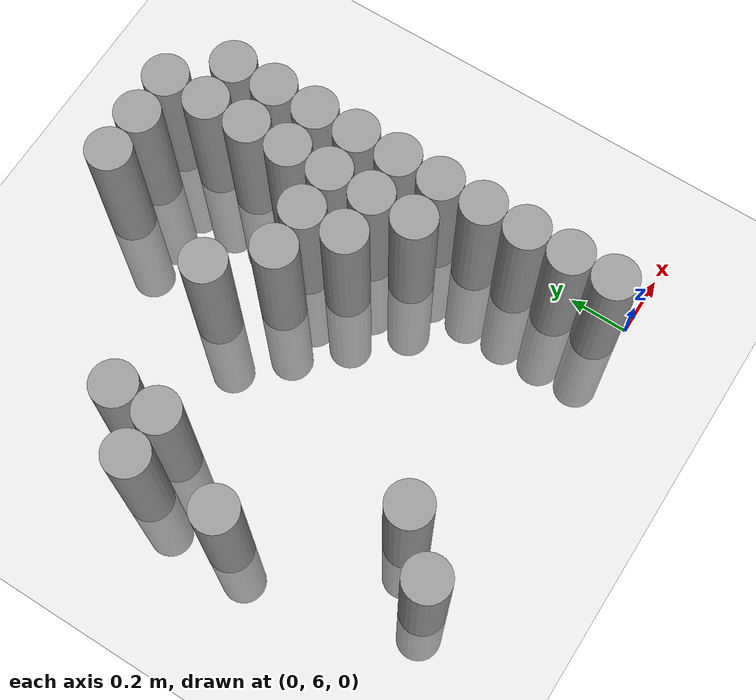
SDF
<sdf version="1.6">
 <world name="default">
  <model name="ground_plane">
   <static>1</static>
   <static>1</static>
   <link name="link">
    <collision name="collision">
     <geometry><plane><normal>0 0 1</normal><size>100 100</size></plane></geometry>
     <surface><friction><ode><mu>100</mu><mu2>50</mu2></ode></friction></surface>
    </collision>
    <visual name="visual">
     <cast_shadows>0</cast_shadows>
     <geometry><plane><normal>0 0 1</normal><size>100 100</size></plane></geometry>
     <material>
      <script><uri>file://media/materials/scripts/gazebo.material</uri><name>Gazebo/Grey</name></script>
     </material>
    </visual>
   </link>
  </model>
  <model name="unit_cylinder_168">
   <static>1</static>
   <pose>-1.275000 6.675000 0.000000 0.000000 0.000000 0.000000</pose>
   <link name="link">
    <inertial>
     <mass>1</mass>
     <inertia><ixx>0.145833</ixx><ixy>0</ixy><ixz>0</ixz><iyy>0.145833</iyy><iyz>0</iyz><izz>0.125</izz></inertia>
    </inertial>
    <collision name="collision">
     <geometry><cylinder><radius>0.075000</radius><length>1</length></cylinder></geometry>
    </collision>
    <visual name="visual">
     <geometry><cylinder><radius>0.075000</radius><length>1</length></cylinder></geometry>
     <material>
      <script><name>Gazebo/Grey</name><uri>file://media/materials/scripts/gazebo.material</uri></script>
     </material>
    </visual>
   </link>
  </model>
  <model name="unit_cylinder_169">
   <static>1</static>
   <pose>-1.275000 6.975000 0.000000 0.000000 0.000000 0.000000</pose>
   <link name="link">
    <inertial>
     <mass>1</mass>
     <inertia><ixx>0.145833</ixx><ixy>0</ixy><ixz>0</ixz><iyy>0.145833</iyy><iyz>0</iyz><izz>0.125</izz></inertia>
    </inertial>
    <collision name="collision">
     <geometry><cylinder><radius>0.075000</radius><length>1</length></cylinder></geometry>
    </collision>
    <visual name="visual">
     <geometry><cylinder><radius>0.075000</radius><length>1</length></cylinder></geometry>
     <material>
      <script><name>Gazebo/Grey</name><uri>file://media/materials/scripts/gazebo.material</uri></script>
     </material>
    </visual>
   </link>
  </model>
  <model name="unit_cylinder_171">
   <static>1</static>
   <pose>-1.125000 6.075000 0.000000 0.000000 0.000000 0.000000</pose>
   <link name="link">
    <inertial>
     <mass>1</mass>
     <inertia><ixx>0.145833</ixx><ixy>0</ixy><ixz>0</ixz><iyy>0.145833</iyy><iyz>0</iyz><izz>0.125</izz></inertia>
    </inertial>
    <collision name="collision">
     <geometry><cylinder><radius>0.075000</radius><length>1</length></cylinder></geometry>
    </collision>
    <visual name="visual">
     <geometry><cylinder><radius>0.075000</radius><length>1</length></cylinder></geometry>
     <material>
      <script><name>Gazebo/Grey</name><uri>file://media/materials/scripts/gazebo.material</uri></script>
     </material>
    </visual>
   </link>
  </model>
  <model name="unit_cylinder_172">
   <static>1</static>
   <pose>-1.125000 6.975000 0.000000 0.000000 0.000000 0.000000</pose>
   <link name="link">
    <inertial>
     <mass>1</mass>
     <inertia><ixx>0.145833</ixx><ixy>0</ixy><ixz>0</ixz><iyy>0.145833</iyy><iyz>0</iyz><izz>0.125</izz></inertia>
    </inertial>
    <collision name="collision">
     <geometry><cylinder><radius>0.075000</radius><length>1</length></cylinder></geometry>
    </collision>
    <visual name="visual">
     <geometry><cylinder><radius>0.075000</radius><length>1</length></cylinder></geometry>
     <material>
      <script><name>Gazebo/Grey</name><uri>file://media/materials/scripts/gazebo.material</uri></script>
     </material>
    </visual>
   </link>
  </model>
  <model name="unit_cylinder_173">
   <static>1</static>
   <pose>-1.125000 7.125000 0.000000 0.000000 0.000000 0.000000</pose>
   <link name="link">
    <inertial>
     <mass>1</mass>
     <inertia><ixx>0.145833</ixx><ixy>0</ixy><ixz>0</ixz><iyy>0.145833</iyy><iyz>0</iyz><izz>0.125</izz></inertia>
    </inertial>
    <collision name="collision">
     <geometry><cylinder><radius>0.075000</radius><length>1</length></cylinder></geometry>
    </collision>
    <visual name="visual">
     <geometry><cylinder><radius>0.075000</radius><length>1</length></cylinder></geometry>
     <material>
      <script><name>Gazebo/Grey</name><uri>file://media/materials/scripts/gazebo.material</uri></script>
     </material>
    </visual>
   </link>
  </model>
  <model name="unit_cylinder_176">
   <static>1</static>
   <pose>-0.975000 6.225000 0.000000 0.000000 0.000000 0.000000</pose>
   <link name="link">
    <inertial>
     <mass>1</mass>
     <inertia><ixx>0.145833</ixx><ixy>0</ixy><ixz>0</ixz><iyy>0.145833</iyy><iyz>0</iyz><izz>0.125</izz></inertia>
    </inertial>
    <collision name="collision">
     <geometry><cylinder><radius>0.075000</radius><length>1</length></cylinder></geometry>
    </collision>
    <visual name="visual">
     <geometry><cylinder><radius>0.075000</radius><length>1</length></cylinder></geometry>
     <material>
      <script><name>Gazebo/Grey</name><uri>file://media/materials/scripts/gazebo.material</uri></script>
     </material>
    </visual>
   </link>
  </model>
  <model name="unit_cylinder_178">
   <static>1</static>
   <pose>-0.675000 7.125000 0.000000 0.000000 0.000000 0.000000</pose>
   <link name="link">
    <inertial>
     <mass>1</mass>
     <inertia><ixx>0.145833</ixx><ixy>0</ixy><ixz>0</ixz><iyy>0.145833</iyy><iyz>0</iyz><izz>0.125</izz></inertia>
    </inertial>
    <collision name="collision">
     <geometry><cylinder><radius>0.075000</radius><length>1</length></cylinder></geometry>
    </collision>
    <visual name="visual">
     <geometry><cylinder><radius>0.075000</radius><length>1</length></cylinder></geometry>
     <material>
      <script><name>Gazebo/Grey</name><uri>file://media/materials/scripts/gazebo.material</uri></script>
     </material>
    </visual>
   </link>
  </model>
  <model name="unit_cylinder_182">
   <static>1</static>
   <pose>-0.525000 6.975000 0.000000 0.000000 0.000000 0.000000</pose>
   <link name="link">
    <inertial>
     <mass>1</mass>
     <inertia><ixx>0.145833</ixx><ixy>0</ixy><ixz>0</ixz><iyy>0.145833</iyy><iyz>0</iyz><izz>0.125</izz></inertia>
    </inertial>
    <collision name="collision">
     <geometry><cylinder><radius>0.075000</radius><length>1</length></cylinder></geometry>
    </collision>
    <visual name="visual">
     <geometry><cylinder><radius>0.075000</radius><length>1</length></cylinder></geometry>
     <material>
      <script><name>Gazebo/Grey</name><uri>file://media/materials/scripts/gazebo.material</uri></script>
     </material>
    </visual>
   </link>
  </model>
  <model name="unit_cylinder_183">
   <static>1</static>
   <pose>-0.525000 7.575000 0.000000 0.000000 0.000000 0.000000</pose>
   <link name="link">
    <inertial>
     <mass>1</mass>
     <inertia><ixx>0.145833</ixx><ixy>0</ixy><ixz>0</ixz><iyy>0.145833</iyy><iyz>0</iyz><izz>0.125</izz></inertia>
    </inertial>
    <collision name="collision">
     <geometry><cylinder><radius>0.075000</radius><length>1</length></cylinder></geometry>
    </collision>
    <visual name="visual">
     <geometry><cylinder><radius>0.075000</radius><length>1</length></cylinder></geometry>
     <material>
      <script><name>Gazebo/Grey</name><uri>file://media/materials/scripts/gazebo.material</uri></script>
     </material>
    </visual>
   </link>
  </model>
  <model name="unit_cylinder_186">
   <static>1</static>
   <pose>-0.375000 6.825000 0.000000 0.000000 0.000000 0.000000</pose>
   <link name="link">
    <inertial>
     <mass>1</mass>
     <inertia><ixx>0.145833</ixx><ixy>0</ixy><ixz>0</ixz><iyy>0.145833</iyy><iyz>0</iyz><izz>0.125</izz></inertia>
    </inertial>
    <collision name="collision">
     <geometry><cylinder><radius>0.075000</radius><length>1</length></cylinder></geometry>
    </collision>
    <visual name="visual">
     <geometry><cylinder><radius>0.075000</radius><length>1</length></cylinder></geometry>
     <material>
      <script><name>Gazebo/Grey</name><uri>file://media/materials/scripts/gazebo.material</uri></script>
     </material>
    </visual>
   </link>
  </model>
  <model name="unit_cylinder_187">
   <static>1</static>
   <pose>-0.375000 6.975000 0.000000 0.000000 0.000000 0.000000</pose>
   <link name="link">
    <inertial>
     <mass>1</mass>
     <inertia><ixx>0.145833</ixx><ixy>0</ixy><ixz>0</ixz><iyy>0.145833</iyy><iyz>0</iyz><izz>0.125</izz></inertia>
    </inertial>
    <collision name="collision">
     <geometry><cylinder><radius>0.075000</radius><length>1</length></cylinder></geometry>
    </collision>
    <visual name="visual">
     <geometry><cylinder><radius>0.075000</radius><length>1</length></cylinder></geometry>
     <material>
      <script><name>Gazebo/Grey</name><uri>file://media/materials/scripts/gazebo.material</uri></script>
     </material>
    </visual>
   </link>
  </model>
  <model name="unit_cylinder_188">
   <static>1</static>
   <pose>-0.375000 7.575000 0.000000 0.000000 0.000000 0.000000</pose>
   <link name="link">
    <inertial>
     <mass>1</mass>
     <inertia><ixx>0.145833</ixx><ixy>0</ixy><ixz>0</ixz><iyy>0.145833</iyy><iyz>0</iyz><izz>0.125</izz></inertia>
    </inertial>
    <collision name="collision">
     <geometry><cylinder><radius>0.075000</radius><length>1</length></cylinder></geometry>
    </collision>
    <visual name="visual">
     <geometry><cylinder><radius>0.075000</radius><length>1</length></cylinder></geometry>
     <material>
      <script><name>Gazebo/Grey</name><uri>file://media/materials/scripts/gazebo.material</uri></script>
     </material>
    </visual>
   </link>
  </model>
  <model name="unit_cylinder_191">
   <static>1</static>
   <pose>-0.225000 6.675000 0.000000 0.000000 0.000000 0.000000</pose>
   <link name="link">
    <inertial>
     <mass>1</mass>
     <inertia><ixx>0.145833</ixx><ixy>0</ixy><ixz>0</ixz><iyy>0.145833</iyy><iyz>0</iyz><izz>0.125</izz></inertia>
    </inertial>
    <collision name="collision">
     <geometry><cylinder><radius>0.075000</radius><length>1</length></cylinder></geometry>
    </collision>
    <visual name="visual">
     <geometry><cylinder><radius>0.075000</radius><length>1</length></cylinder></geometry>
     <material>
      <script><name>Gazebo/Grey</name><uri>file://media/materials/scripts/gazebo.material</uri></script>
     </material>
    </visual>
   </link>
  </model>
  <model name="unit_cylinder_192">
   <static>1</static>
   <pose>-0.225000 6.825000 0.000000 0.000000 0.000000 0.000000</pose>
   <link name="link">
    <inertial>
     <mass>1</mass>
     <inertia><ixx>0.145833</ixx><ixy>0</ixy><ixz>0</ixz><iyy>0.145833</iyy><iyz>0</iyz><izz>0.125</izz></inertia>
    </inertial>
    <collision name="collision">
     <geometry><cylinder><radius>0.075000</radius><length>1</length></cylinder></geometry>
    </collision>
    <visual name="visual">
     <geometry><cylinder><radius>0.075000</radius><length>1</length></cylinder></geometry>
     <material>
      <script><name>Gazebo/Grey</name><uri>file://media/materials/scripts/gazebo.material</uri></script>
     </material>
    </visual>
   </link>
  </model>
  <model name="unit_cylinder_193">
   <static>1</static>
   <pose>-0.225000 6.975000 0.000000 0.000000 0.000000 0.000000</pose>
   <link name="link">
    <inertial>
     <mass>1</mass>
     <inertia><ixx>0.145833</ixx><ixy>0</ixy><ixz>0</ixz><iyy>0.145833</iyy><iyz>0</iyz><izz>0.125</izz></inertia>
    </inertial>
    <collision name="collision">
     <geometry><cylinder><radius>0.075000</radius><length>1</length></cylinder></geometry>
    </collision>
    <visual name="visual">
     <geometry><cylinder><radius>0.075000</radius><length>1</length></cylinder></geometry>
     <material>
      <script><name>Gazebo/Grey</name><uri>file://media/materials/scripts/gazebo.material</uri></script>
     </material>
    </visual>
   </link>
  </model>
  <model name="unit_cylinder_194">
   <static>1</static>
   <pose>-0.225000 7.125000 0.000000 0.000000 0.000000 0.000000</pose>
   <link name="link">
    <inertial>
     <mass>1</mass>
     <inertia><ixx>0.145833</ixx><ixy>0</ixy><ixz>0</ixz><iyy>0.145833</iyy><iyz>0</iyz><izz>0.125</izz></inertia>
    </inertial>
    <collision name="collision">
     <geometry><cylinder><radius>0.075000</radius><length>1</length></cylinder></geometry>
    </collision>
    <visual name="visual">
     <geometry><cylinder><radius>0.075000</radius><length>1</length></cylinder></geometry>
     <material>
      <script><name>Gazebo/Grey</name><uri>file://media/materials/scripts/gazebo.material</uri></script>
     </material>
    </visual>
   </link>
  </model>
  <model name="unit_cylinder_195">
   <static>1</static>
   <pose>-0.225000 7.275000 0.000000 0.000000 0.000000 0.000000</pose>
   <link name="link">
    <inertial>
     <mass>1</mass>
     <inertia><ixx>0.145833</ixx><ixy>0</ixy><ixz>0</ixz><iyy>0.145833</iyy><iyz>0</iyz><izz>0.125</izz></inertia>
    </inertial>
    <collision name="collision">
     <geometry><cylinder><radius>0.075000</radius><length>1</length></cylinder></geometry>
    </collision>
    <visual name="visual">
     <geometry><cylinder><radius>0.075000</radius><length>1</length></cylinder></geometry>
     <material>
      <script><name>Gazebo/Grey</name><uri>file://media/materials/scripts/gazebo.material</uri></script>
     </material>
    </visual>
   </link>
  </model>
  <model name="unit_cylinder_196">
   <static>1</static>
   <pose>-0.225000 7.425000 0.000000 0.000000 0.000000 0.000000</pose>
   <link name="link">
    <inertial>
     <mass>1</mass>
     <inertia><ixx>0.145833</ixx><ixy>0</ixy><ixz>0</ixz><iyy>0.145833</iyy><iyz>0</iyz><izz>0.125</izz></inertia>
    </inertial>
    <collision name="collision">
     <geometry><cylinder><radius>0.075000</radius><length>1</length></cylinder></geometry>
    </collision>
    <visual name="visual">
     <geometry><cylinder><radius>0.075000</radius><length>1</length></cylinder></geometry>
     <material>
      <script><name>Gazebo/Grey</name><uri>file://media/materials/scripts/gazebo.material</uri></script>
     </material>
    </visual>
   </link>
  </model>
  <model name="unit_cylinder_197">
   <static>1</static>
   <pose>-0.225000 7.575000 0.000000 0.000000 0.000000 0.000000</pose>
   <link name="link">
    <inertial>
     <mass>1</mass>
     <inertia><ixx>0.145833</ixx><ixy>0</ixy><ixz>0</ixz><iyy>0.145833</iyy><iyz>0</iyz><izz>0.125</izz></inertia>
    </inertial>
    <collision name="collision">
     <geometry><cylinder><radius>0.075000</radius><length>1</length></cylinder></geometry>
    </collision>
    <visual name="visual">
     <geometry><cylinder><radius>0.075000</radius><length>1</length></cylinder></geometry>
     <material>
      <script><name>Gazebo/Grey</name><uri>file://media/materials/scripts/gazebo.material</uri></script>
     </material>
    </visual>
   </link>
  </model>
  <model name="unit_cylinder_209">
   <static>1</static>
   <pose>-0.075000 6.075000 0.000000 0.000000 0.000000 0.000000</pose>
   <link name="link">
    <inertial>
     <mass>1</mass>
     <inertia><ixx>0.145833</ixx><ixy>0</ixy><ixz>0</ixz><iyy>0.145833</iyy><iyz>0</iyz><izz>0.125</izz></inertia>
    </inertial>
    <collision name="collision">
     <geometry><cylinder><radius>0.075000</radius><length>1</length></cylinder></geometry>
    </collision>
    <visual name="visual">
     <geometry><cylinder><radius>0.075000</radius><length>1</length></cylinder></geometry>
     <material>
      <script><name>Gazebo/Grey</name><uri>file://media/materials/scripts/gazebo.material</uri></script>
     </material>
    </visual>
   </link>
  </model>
  <model name="unit_cylinder_210">
   <static>1</static>
   <pose>-0.075000 6.225000 0.000000 0.000000 0.000000 0.000000</pose>
   <link name="link">
    <inertial>
     <mass>1</mass>
     <inertia><ixx>0.145833</ixx><ixy>0</ixy><ixz>0</ixz><iyy>0.145833</iyy><iyz>0</iyz><izz>0.125</izz></inertia>
    </inertial>
    <collision name="collision">
     <geometry><cylinder><radius>0.075000</radius><length>1</length></cylinder></geometry>
    </collision>
    <visual name="visual">
     <geometry><cylinder><radius>0.075000</radius><length>1</length></cylinder></geometry>
     <material>
      <script><name>Gazebo/Grey</name><uri>file://media/materials/scripts/gazebo.material</uri></script>
     </material>
    </visual>
   </link>
  </model>
  <model name="unit_cylinder_211">
   <static>1</static>
   <pose>-0.075000 6.375000 0.000000 0.000000 0.000000 0.000000</pose>
   <link name="link">
    <inertial>
     <mass>1</mass>
     <inertia><ixx>0.145833</ixx><ixy>0</ixy><ixz>0</ixz><iyy>0.145833</iyy><iyz>0</iyz><izz>0.125</izz></inertia>
    </inertial>
    <collision name="collision">
     <geometry><cylinder><radius>0.075000</radius><length>1</length></cylinder></geometry>
    </collision>
    <visual name="visual">
     <geometry><cylinder><radius>0.075000</radius><length>1</length></cylinder></geometry>
     <material>
      <script><name>Gazebo/Grey</name><uri>file://media/materials/scripts/gazebo.material</uri></script>
     </material>
    </visual>
   </link>
  </model>
  <model name="unit_cylinder_212">
   <static>1</static>
   <pose>-0.075000 6.525000 0.000000 0.000000 0.000000 0.000000</pose>
   <link name="link">
    <inertial>
     <mass>1</mass>
     <inertia><ixx>0.145833</ixx><ixy>0</ixy><ixz>0</ixz><iyy>0.145833</iyy><iyz>0</iyz><izz>0.125</izz></inertia>
    </inertial>
    <collision name="collision">
     <geometry><cylinder><radius>0.075000</radius><length>1</length></cylinder></geometry>
    </collision>
    <visual name="visual">
     <geometry><cylinder><radius>0.075000</radius><length>1</length></cylinder></geometry>
     <material>
      <script><name>Gazebo/Grey</name><uri>file://media/materials/scripts/gazebo.material</uri></script>
     </material>
    </visual>
   </link>
  </model>
  <model name="unit_cylinder_213">
   <static>1</static>
   <pose>-0.075000 6.675000 0.000000 0.000000 0.000000 0.000000</pose>
   <link name="link">
    <inertial>
     <mass>1</mass>
     <inertia><ixx>0.145833</ixx><ixy>0</ixy><ixz>0</ixz><iyy>0.145833</iyy><iyz>0</iyz><izz>0.125</izz></inertia>
    </inertial>
    <collision name="collision">
     <geometry><cylinder><radius>0.075000</radius><length>1</length></cylinder></geometry>
    </collision>
    <visual name="visual">
     <geometry><cylinder><radius>0.075000</radius><length>1</length></cylinder></geometry>
     <material>
      <script><name>Gazebo/Grey</name><uri>file://media/materials/scripts/gazebo.material</uri></script>
     </material>
    </visual>
   </link>
  </model>
  <model name="unit_cylinder_214">
   <static>1</static>
   <pose>-0.075000 6.825000 0.000000 0.000000 0.000000 0.000000</pose>
   <link name="link">
    <inertial>
     <mass>1</mass>
     <inertia><ixx>0.145833</ixx><ixy>0</ixy><ixz>0</ixz><iyy>0.145833</iyy><iyz>0</iyz><izz>0.125</izz></inertia>
    </inertial>
    <collision name="collision">
     <geometry><cylinder><radius>0.075000</radius><length>1</length></cylinder></geometry>
    </collision>
    <visual name="visual">
     <geometry><cylinder><radius>0.075000</radius><length>1</length></cylinder></geometry>
     <material>
      <script><name>Gazebo/Grey</name><uri>file://media/materials/scripts/gazebo.material</uri></script>
     </material>
    </visual>
   </link>
  </model>
  <model name="unit_cylinder_215">
   <static>1</static>
   <pose>-0.075000 6.975000 0.000000 0.000000 0.000000 0.000000</pose>
   <link name="link">
    <inertial>
     <mass>1</mass>
     <inertia><ixx>0.145833</ixx><ixy>0</ixy><ixz>0</ixz><iyy>0.145833</iyy><iyz>0</iyz><izz>0.125</izz></inertia>
    </inertial>
    <collision name="collision">
     <geometry><cylinder><radius>0.075000</radius><length>1</length></cylinder></geometry>
    </collision>
    <visual name="visual">
     <geometry><cylinder><radius>0.075000</radius><length>1</length></cylinder></geometry>
     <material>
      <script><name>Gazebo/Grey</name><uri>file://media/materials/scripts/gazebo.material</uri></script>
     </material>
    </visual>
   </link>
  </model>
  <model name="unit_cylinder_216">
   <static>1</static>
   <pose>-0.075000 7.125000 0.000000 0.000000 0.000000 0.000000</pose>
   <link name="link">
    <inertial>
     <mass>1</mass>
     <inertia><ixx>0.145833</ixx><ixy>0</ixy><ixz>0</ixz><iyy>0.145833</iyy><iyz>0</iyz><izz>0.125</izz></inertia>
    </inertial>
    <collision name="collision">
     <geometry><cylinder><radius>0.075000</radius><length>1</length></cylinder></geometry>
    </collision>
    <visual name="visual">
     <geometry><cylinder><radius>0.075000</radius><length>1</length></cylinder></geometry>
     <material>
      <script><name>Gazebo/Grey</name><uri>file://media/materials/scripts/gazebo.material</uri></script>
     </material>
    </visual>
   </link>
  </model>
  <model name="unit_cylinder_217">
   <static>1</static>
   <pose>-0.075000 7.275000 0.000000 0.000000 0.000000 0.000000</pose>
   <link name="link">
    <inertial>
     <mass>1</mass>
     <inertia><ixx>0.145833</ixx><ixy>0</ixy><ixz>0</ixz><iyy>0.145833</iyy><iyz>0</iyz><izz>0.125</izz></inertia>
    </inertial>
    <collision name="collision">
     <geometry><cylinder><radius>0.075000</radius><length>1</length></cylinder></geometry>
    </collision>
    <visual name="visual">
     <geometry><cylinder><radius>0.075000</radius><length>1</length></cylinder></geometry>
     <material>
      <script><name>Gazebo/Grey</name><uri>file://media/materials/scripts/gazebo.material</uri></script>
     </material>
    </visual>
   </link>
  </model>
  <model name="unit_cylinder_218">
   <static>1</static>
   <pose>-0.075000 7.425000 0.000000 0.000000 0.000000 0.000000</pose>
   <link name="link">
    <inertial>
     <mass>1</mass>
     <inertia><ixx>0.145833</ixx><ixy>0</ixy><ixz>0</ixz><iyy>0.145833</iyy><iyz>0</iyz><izz>0.125</izz></inertia>
    </inertial>
    <collision name="collision">
     <geometry><cylinder><radius>0.075000</radius><length>1</length></cylinder></geometry>
    </collision>
    <visual name="visual">
     <geometry><cylinder><radius>0.075000</radius><length>1</length></cylinder></geometry>
     <material>
      <script><name>Gazebo/Grey</name><uri>file://media/materials/scripts/gazebo.material</uri></script>
     </material>
    </visual>
   </link>
  </model>
 </world>
</sdf>
